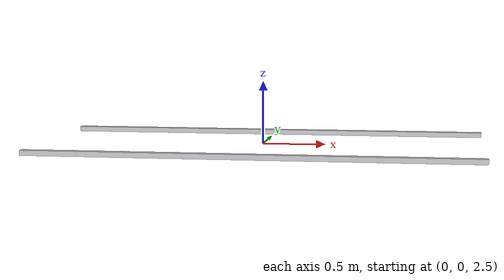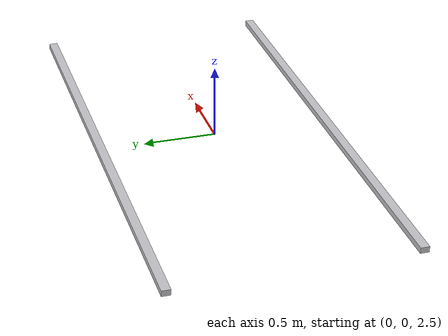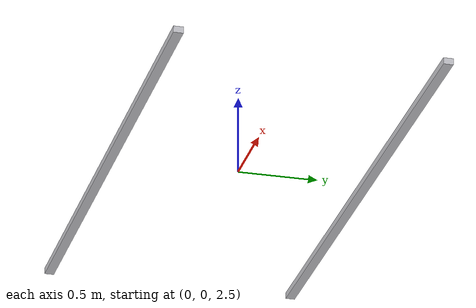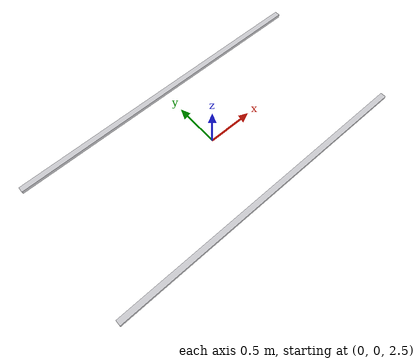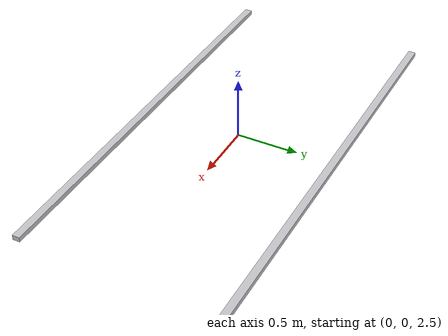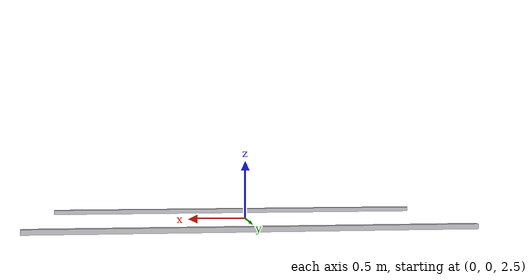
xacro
<?xml version="1.0"?>
<robot name="skyvolt_track" xmlns:xacro="http://www.ros.org/wiki/xacro">
  <xacro:property name="rail_h" value="0.040"/>
  <xacro:property name="rail_w" value="0.060"/>
  <xacro:property name="straight_l" value="3.5"/>
  <xacro:property name="curve_r" value="0.8"/>
  <xacro:property name="ceiling_z" value="2.5"/>

  <link name="track_root"/>

  <xacro:macro name="straight_segment" params="name x y yaw">
    <link name="${name}">
      <visual>
        <origin xyz="0 0 0"/>
        <geometry><box size="${straight_l} ${rail_w} ${rail_h}"/></geometry>
        <material name="alu_grey"><color rgba="0.78 0.78 0.80 1.0"/></material>
      </visual>
      <collision>
        <geometry><box size="${straight_l} ${rail_w} ${rail_h}"/></geometry>
      </collision>
      <inertial><mass value="20"/>
        <inertia ixx="0.5" ixy="0" ixz="0" iyy="0.5" iyz="0" izz="0.5"/>
      </inertial>
    </link>
    <joint name="${name}_to_root" type="fixed">
      <parent link="track_root"/>
      <child  link="${name}"/>
      <origin xyz="${x} ${y} ${ceiling_z}" rpy="0 0 ${yaw}"/>
    </joint>
  </xacro:macro>

  <xacro:straight_segment name="rail_north" x="0"  y="${ curve_r}" yaw="0"/>
  <xacro:straight_segment name="rail_south" x="0"  y="${-curve_r}" yaw="0"/>

  <!--
    Curves are approximated by 8 box segments per quarter for visual clarity.
    Real loaded geometry is in the SDF world; this is just the kinematic frame.
  -->
  <link name="curve_east_marker"/>
  <joint name="curve_east_to_root" type="fixed">
    <parent link="track_root"/>
    <child  link="curve_east_marker"/>
    <origin xyz="${straight_l/2} 0 ${ceiling_z}"/>
  </joint>

  <link name="curve_west_marker"/>
  <joint name="curve_west_to_root" type="fixed">
    <parent link="track_root"/>
    <child  link="curve_west_marker"/>
    <origin xyz="${-straight_l/2} 0 ${ceiling_z}"/>
  </joint>

</robot>
